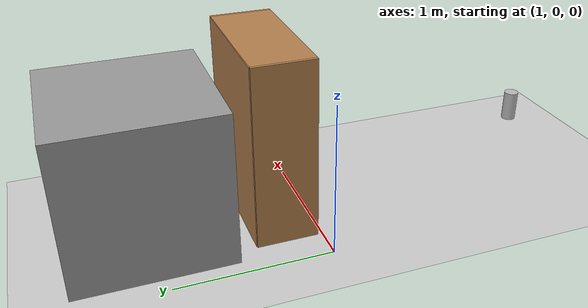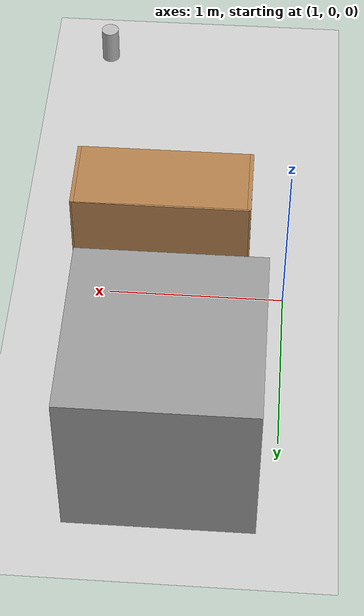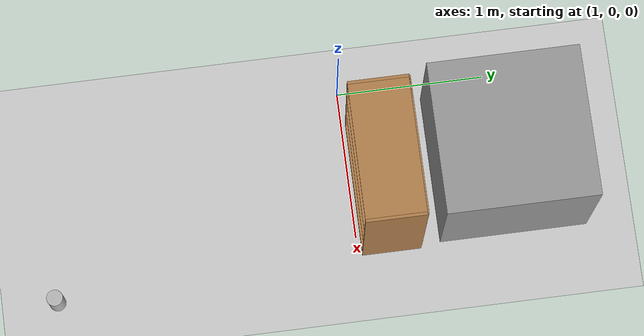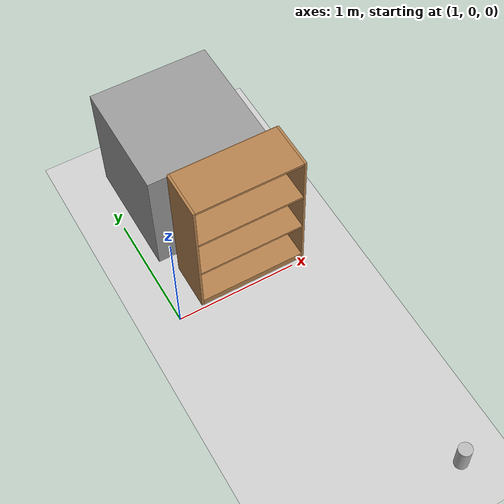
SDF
<sdf version="1.6">
 <world name="default">
  <light name="sun" type="directional">
   <pose>0 0 10 0 -0 0</pose>
   <diffuse>0.8 0.8 0.8 1</diffuse>
   <specular>0.2 0.2 0.2 1</specular>
   <attenuation>
    <range>1000</range>
    <constant>0.9</constant>
    <linear>0.01</linear>
    <quadratic>0.001</quadratic>
   </attenuation>
   <direction>-0.5 0.1 -0.9</direction>
  </light>
  <model name="ground_plane">
   <static>1</static>
   <link name="link">
    <collision name="collision">
     <geometry><plane><normal>0 0 1</normal><size>100 100</size></plane></geometry>
     <surface><friction><ode><mu>100</mu><mu2>50</mu2></ode></friction></surface>
    </collision>
    <visual name="visual">
     <cast_shadows>0</cast_shadows>
     <geometry><plane><normal>0 0 1</normal><size>100 100</size></plane></geometry>
     <material>
      <script><uri>file://media/materials/scripts/gazebo.material</uri><name>Gazebo/Grey</name></script>
     </material>
    </visual>
   </link>
  </model>
  <gravity>0 0 -9.8</gravity>
  <magnetic_field>6e-06 2.3e-05 -4.2e-05</magnetic_field>
  <atmosphere type="adiabatic"/>
  <physics name="default_physics" default="0" type="ode">
   <max_step_size>0.001</max_step_size>
   <real_time_factor>1</real_time_factor>
   <real_time_update_rate>1000</real_time_update_rate>
  </physics>
  <scene><ambient>0.4 0.4 0.4 1</ambient><background>0.7 0.7 0.7 1</background><shadows>1</shadows></scene>
  <audio><device>default</device></audio>
  <spherical_coordinates>
   <surface_model>EARTH_WGS84</surface_model>
   <latitude_deg>0</latitude_deg>
   <longitude_deg>0</longitude_deg>
   <elevation>0</elevation>
   <heading_deg>0</heading_deg>
  </spherical_coordinates>
  <model name="unit_box">
   <pose>1.59918 1.06078 0.499995 0 1e-05 0</pose>
   <link name="link">
    <inertial>
     <mass>1</mass>
     <inertia>
      <ixx>0.166667</ixx>
      <ixy>0</ixy>
      <ixz>0</ixz>
      <iyy>0.166667</iyy>
      <iyz>0</iyz>
      <izz>0.166667</izz>
     </inertia>
    </inertial>
    <collision name="collision"><geometry><box><size>1 1 1</size></box></geometry></collision>
    <visual name="visual">
     <geometry><box><size>1 1 1</size></box></geometry>
     <material>
      <script><name>Gazebo/Grey</name><uri>file://media/materials/scripts/gazebo.material</uri></script>
     </material>
    </visual>
   </link>
  </model>
  <model name="bookshelf">
   <static>1</static>
   <link name="link">
    <inertial><mass>1</mass></inertial>
    <collision name="back">
     <pose>0 0.005 0.6 0 -0 0</pose>
     <geometry><box><size>0.9 0.01 1.2</size></box></geometry>
    </collision>
    <visual name="visual1">
     <pose>0 0.005 0.6 0 -0 0</pose>
     <geometry><box><size>0.9 0.01 1.2</size></box></geometry>
     <material>
      <script><uri>file://media/materials/scripts/gazebo.material</uri><name>Gazebo/Wood</name></script>
     </material>
    </visual>
    <collision name="left_side">
     <pose>0.45 -0.195 0.6 0 -0 0</pose>
     <geometry><box><size>0.02 0.4 1.2</size></box></geometry>
    </collision>
    <visual name="visual2">
     <pose>0.45 -0.195 0.6 0 -0 0</pose>
     <geometry><box><size>0.02 0.4 1.2</size></box></geometry>
     <material>
      <script><uri>file://media/materials/scripts/gazebo.material</uri><name>Gazebo/Wood</name></script>
     </material>
    </visual>
    <collision name="right_side">
     <pose>-0.45 -0.195 0.6 0 -0 0</pose>
     <geometry><box><size>0.02 0.4 1.2</size></box></geometry>
    </collision>
    <visual name="visual3">
     <pose>-0.45 -0.195 0.6 0 -0 0</pose>
     <geometry><box><size>0.02 0.4 1.2</size></box></geometry>
     <material>
      <script><uri>file://media/materials/scripts/gazebo.material</uri><name>Gazebo/Wood</name></script>
     </material>
    </visual>
    <collision name="bottom">
     <pose>0 -0.195 0.03 0 -0 0</pose>
     <geometry><box><size>0.88 0.4 0.06</size></box></geometry>
    </collision>
    <visual name="visual4">
     <pose>0 -0.195 0.03 0 -0 0</pose>
     <geometry><box><size>0.88 0.4 0.06</size></box></geometry>
     <material>
      <script><uri>file://media/materials/scripts/gazebo.material</uri><name>Gazebo/Wood</name></script>
     </material>
    </visual>
    <collision name="top">
     <pose>0 -0.195 1.19 0 -0 0</pose>
     <geometry><box><size>0.88 0.4 0.02</size></box></geometry>
    </collision>
    <visual name="visual5">
     <pose>0 -0.195 1.19 0 -0 0</pose>
     <geometry><box><size>0.88 0.4 0.02</size></box></geometry>
     <material>
      <script><uri>file://media/materials/scripts/gazebo.material</uri><name>Gazebo/Wood</name></script>
     </material>
    </visual>
    <collision name="low_shelf">
     <pose>0 -0.195 0.43 0 -0 0</pose>
     <geometry><box><size>0.88 0.4 0.02</size></box></geometry>
    </collision>
    <visual name="visual6">
     <pose>0 -0.195 0.43 0 -0 0</pose>
     <geometry><box><size>0.88 0.4 0.02</size></box></geometry>
     <material>
      <script><uri>file://media/materials/scripts/gazebo.material</uri><name>Gazebo/Wood</name></script>
     </material>
    </visual>
    <collision name="high_shelf">
     <pose>0 -0.195 0.8 0 -0 0</pose>
     <geometry><box><size>0.88 0.4 0.02</size></box></geometry>
    </collision>
    <visual name="visual7">
     <pose>0 -0.195 0.8 0 -0 0</pose>
     <geometry><box><size>0.88 0.4 0.02</size></box></geometry>
     <material>
      <script><uri>file://media/materials/scripts/gazebo.material</uri><name>Gazebo/Wood</name></script>
     </material>
    </visual>
   </link>
   <pose>1.66536 0.423403 0 0 -0 0</pose>
  </model>
  <model name="beer">
   <link name="link">
    <pose>0 0 0.115 0 -0 0</pose>
    <inertial>
     <mass>0.39</mass>
     <inertia><ixx>0.00058</ixx><ixy>0</ixy><ixz>0</ixz><iyy>0.00058</iyy><iyz>0</iyz><izz>0.00019</izz></inertia>
    </inertial>
    <collision name="collision">
     <geometry><cylinder><radius>0.055</radius><length>0.23</length></cylinder></geometry>
    </collision>
    <visual name="visual">
     <geometry><cylinder><radius>0.055</radius><length>0.23</length></cylinder></geometry>
     <material>
      <script>
       <uri>model://beer/materials/scripts</uri>
       <uri>model://beer/materials/textures</uri>
       <name>Beer/Diffuse</name>
      </script>
     </material>
    </visual>
   </link>
   <pose>2.19085 -2.04644 -2e-06 1e-06 -0 -5e-06</pose>
  </model>
 </world>
</sdf>
